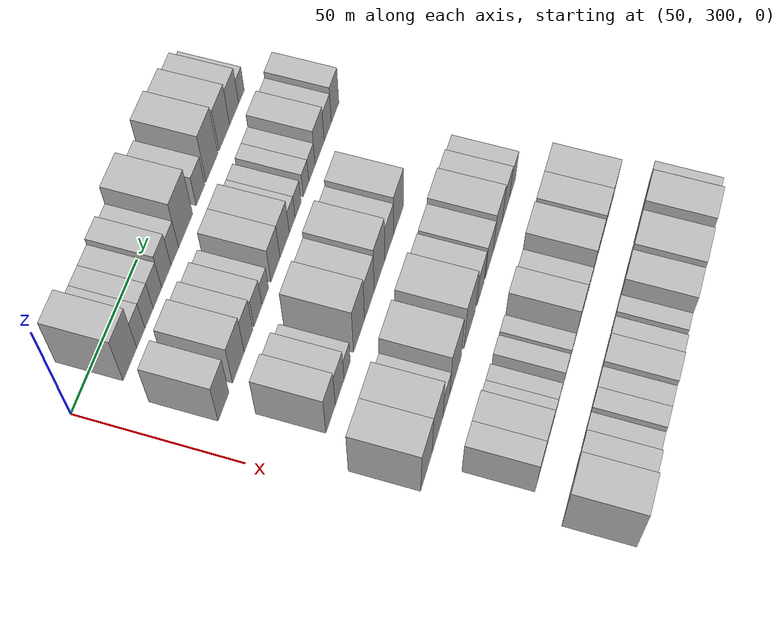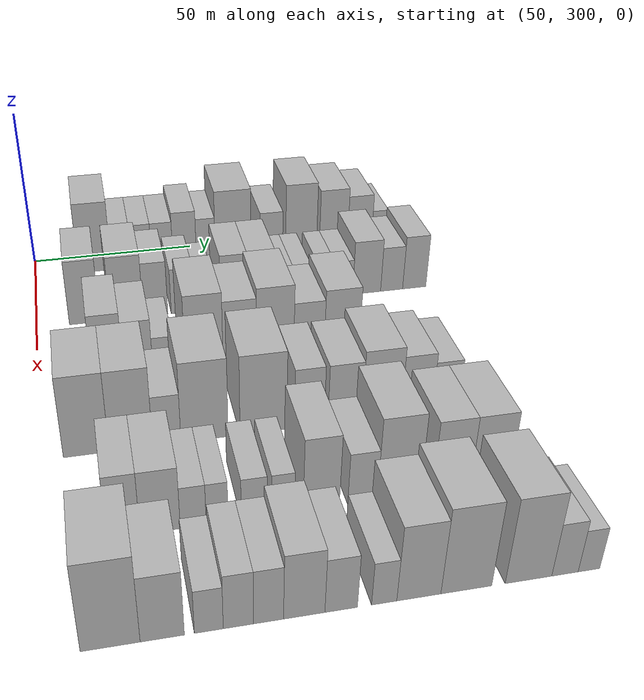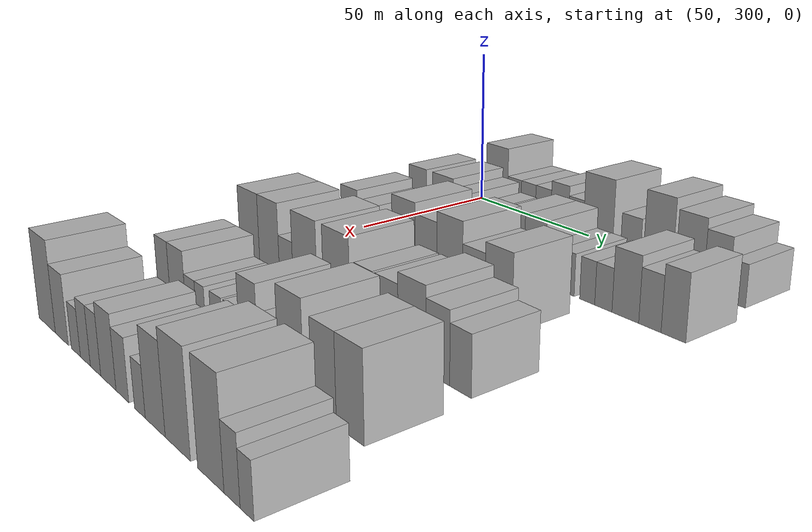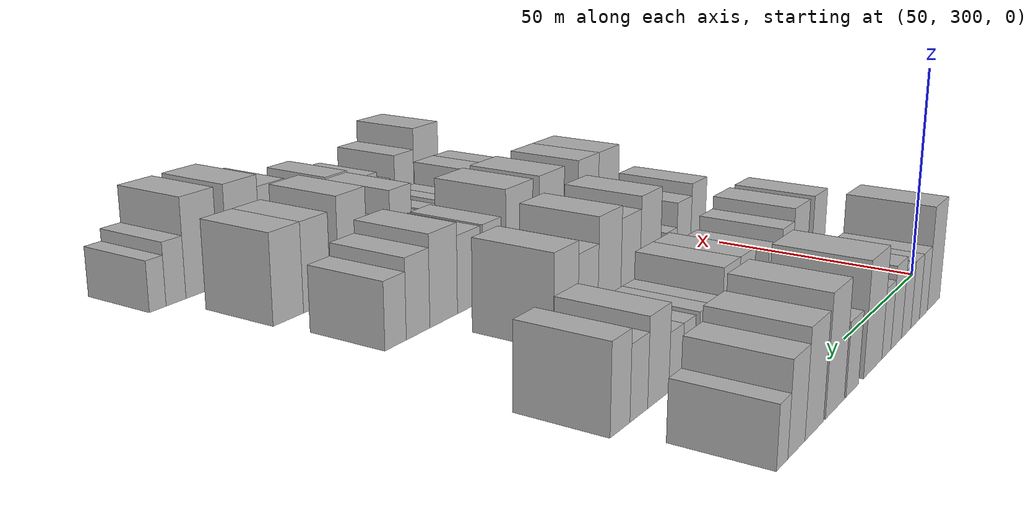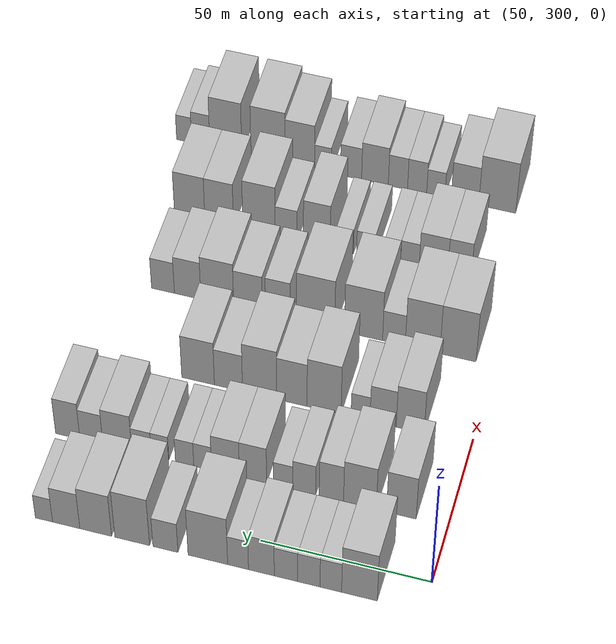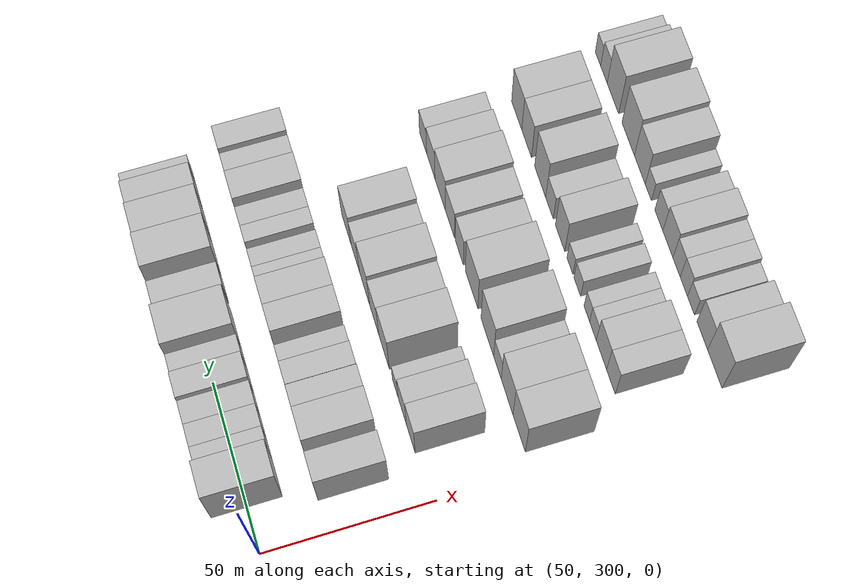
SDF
<sdf version="1.6">
 <world name="default">
  <model name="building_99">
   <static>1</static>
   <pose>50.0000 318.4404 0 0.000000 0.000000 0.000000</pose>
   <link name="link">
    <pose>0 0 12.00 0 0 0</pose>
    <collision name="collision"><geometry><box><size>20.0000 10.3423 24.0000</size></box></geometry></collision>
    <visual name="visual">
     <cast_shadows>0</cast_shadows>
     <geometry><box><size>20.0000 10.3423 24.0000</size></box></geometry>
     <material>
      <script>
       <uri>model://HANNAS_wall/materials/scripts</uri>
       <uri>model://HANNAS_wall/materials/textures</uri>
       <name>vrc/HANNAS_wall</name>
      </script>
     </material>
    </visual>
   </link>
  </model>
  <model name="building_100">
   <static>1</static>
   <pose>50.0000 326.7508 0 0.000000 0.000000 0.000000</pose>
   <link name="link">
    <pose>0 0 7.50 0 0 0</pose>
    <collision name="collision"><geometry><box><size>20.0000 6.2785 15.0000</size></box></geometry></collision>
    <visual name="visual">
     <cast_shadows>0</cast_shadows>
     <geometry><box><size>20.0000 6.2785 15.0000</size></box></geometry>
     <material>
      <script>
       <uri>model://HANNAS_wall/materials/scripts</uri>
       <uri>model://HANNAS_wall/materials/textures</uri>
       <name>vrc/HANNAS_wall</name>
      </script>
     </material>
    </visual>
   </link>
  </model>
  <model name="building_101">
   <static>1</static>
   <pose>50.0000 333.1623 0 0.000000 0.000000 0.000000</pose>
   <link name="link">
    <pose>0 0 7.50 0 0 0</pose>
    <collision name="collision"><geometry><box><size>20.0000 6.5444 15.0000</size></box></geometry></collision>
    <visual name="visual">
     <cast_shadows>0</cast_shadows>
     <geometry><box><size>20.0000 6.5444 15.0000</size></box></geometry>
     <material>
      <script>
       <uri>model://HANNAS_wall/materials/scripts</uri>
       <uri>model://HANNAS_wall/materials/textures</uri>
       <name>vrc/HANNAS_wall</name>
      </script>
     </material>
    </visual>
   </link>
  </model>
  <model name="building_102">
   <static>1</static>
   <pose>50.0000 339.8382 0 0.000000 0.000000 0.000000</pose>
   <link name="link">
    <pose>0 0 7.50 0 0 0</pose>
    <collision name="collision"><geometry><box><size>20.0000 6.8074 15.0000</size></box></geometry></collision>
    <visual name="visual">
     <cast_shadows>0</cast_shadows>
     <geometry><box><size>20.0000 6.8074 15.0000</size></box></geometry>
     <material>
      <script>
       <uri>model://HANNAS_wall/materials/scripts</uri>
       <uri>model://HANNAS_wall/materials/textures</uri>
       <name>vrc/HANNAS_wall</name>
      </script>
     </material>
    </visual>
   </link>
  </model>
  <model name="building_103">
   <static>1</static>
   <pose>50.0000 347.0147 0 0.000000 0.000000 0.000000</pose>
   <link name="link">
    <pose>0 0 9.00 0 0 0</pose>
    <collision name="collision"><geometry><box><size>20.0000 7.5456 18.0000</size></box></geometry></collision>
    <visual name="visual">
     <cast_shadows>0</cast_shadows>
     <geometry><box><size>20.0000 7.5456 18.0000</size></box></geometry>
     <material>
      <script>
       <uri>model://HANNAS_wall/materials/scripts</uri>
       <uri>model://HANNAS_wall/materials/textures</uri>
       <name>vrc/HANNAS_wall</name>
      </script>
     </material>
    </visual>
   </link>
  </model>
  <model name="building_104">
   <static>1</static>
   <pose>50.0000 353.8501 0 0.000000 0.000000 0.000000</pose>
   <link name="link">
    <pose>0 0 7.50 0 0 0</pose>
    <collision name="collision"><geometry><box><size>20.0000 6.1251 15.0000</size></box></geometry></collision>
    <visual name="visual">
     <cast_shadows>0</cast_shadows>
     <geometry><box><size>20.0000 6.1251 15.0000</size></box></geometry>
     <material>
      <script>
       <uri>model://HANNAS_wall/materials/scripts</uri>
       <uri>model://HANNAS_wall/materials/textures</uri>
       <name>vrc/HANNAS_wall</name>
      </script>
     </material>
    </visual>
   </link>
  </model>
  <model name="building_105">
   <static>1</static>
   <pose>50.0000 362.7485 0 0.000000 0.000000 0.000000</pose>
   <link name="link">
    <pose>0 0 12.00 0 0 0</pose>
    <collision name="collision"><geometry><box><size>20.0000 11.6719 24.0000</size></box></geometry></collision>
    <visual name="visual">
     <cast_shadows>0</cast_shadows>
     <geometry><box><size>20.0000 11.6719 24.0000</size></box></geometry>
     <material>
      <script>
       <uri>model://HANNAS_wall/materials/scripts</uri>
       <uri>model://HANNAS_wall/materials/textures</uri>
       <name>vrc/HANNAS_wall</name>
      </script>
     </material>
    </visual>
   </link>
  </model>
  <model name="building_106">
   <static>1</static>
   <pose>50.0000 375.2909 0 0.000000 0.000000 0.000000</pose>
   <link name="link">
    <pose>0 0 7.50 0 0 0</pose>
    <collision name="collision"><geometry><box><size>20.0000 7.4128 15.0000</size></box></geometry></collision>
    <visual name="visual">
     <cast_shadows>0</cast_shadows>
     <geometry><box><size>20.0000 7.4128 15.0000</size></box></geometry>
     <material>
      <script>
       <uri>model://HANNAS_wall/materials/scripts</uri>
       <uri>model://HANNAS_wall/materials/textures</uri>
       <name>vrc/HANNAS_wall</name>
      </script>
     </material>
    </visual>
   </link>
  </model>
  <model name="building_107">
   <static>1</static>
   <pose>50.0000 385.1627 0 0.000000 0.000000 0.000000</pose>
   <link name="link">
    <pose>0 0 12.00 0 0 0</pose>
    <collision name="collision"><geometry><box><size>20.0000 10.3308 24.0000</size></box></geometry></collision>
    <visual name="visual">
     <cast_shadows>0</cast_shadows>
     <geometry><box><size>20.0000 10.3308 24.0000</size></box></geometry>
     <material>
      <script>
       <uri>model://HANNAS_wall/materials/scripts</uri>
       <uri>model://HANNAS_wall/materials/textures</uri>
       <name>vrc/HANNAS_wall</name>
      </script>
     </material>
    </visual>
   </link>
  </model>
  <model name="building_108">
   <static>1</static>
   <pose>50.0000 396.0615 0 0.000000 0.000000 0.000000</pose>
   <link name="link">
    <pose>0 0 10.50 0 0 0</pose>
    <collision name="collision"><geometry><box><size>20.0000 9.4669 21.0000</size></box></geometry></collision>
    <visual name="visual">
     <cast_shadows>0</cast_shadows>
     <geometry><box><size>20.0000 9.4669 21.0000</size></box></geometry>
     <material>
      <script>
       <uri>model://HANNAS_wall/materials/scripts</uri>
       <uri>model://HANNAS_wall/materials/textures</uri>
       <name>vrc/HANNAS_wall</name>
      </script>
     </material>
    </visual>
   </link>
  </model>
  <model name="building_109">
   <static>1</static>
   <pose>50.0000 404.8894 0 0.000000 0.000000 0.000000</pose>
   <link name="link">
    <pose>0 0 9.00 0 0 0</pose>
    <collision name="collision"><geometry><box><size>20.0000 8.1889 18.0000</size></box></geometry></collision>
    <visual name="visual">
     <cast_shadows>0</cast_shadows>
     <geometry><box><size>20.0000 8.1889 18.0000</size></box></geometry>
     <material>
      <script>
       <uri>model://HANNAS_wall/materials/scripts</uri>
       <uri>model://HANNAS_wall/materials/textures</uri>
       <name>vrc/HANNAS_wall</name>
      </script>
     </material>
    </visual>
   </link>
  </model>
  <model name="building_110">
   <static>1</static>
   <pose>50.0000 411.5685 0 0.000000 0.000000 0.000000</pose>
   <link name="link">
    <pose>0 0 6.00 0 0 0</pose>
    <collision name="collision"><geometry><box><size>20.0000 5.1693 12.0000</size></box></geometry></collision>
    <visual name="visual">
     <cast_shadows>0</cast_shadows>
     <geometry><box><size>20.0000 5.1693 12.0000</size></box></geometry>
     <material>
      <script>
       <uri>model://HANNAS_wall/materials/scripts</uri>
       <uri>model://HANNAS_wall/materials/textures</uri>
       <name>vrc/HANNAS_wall</name>
      </script>
     </material>
    </visual>
   </link>
  </model>
  <model name="building_210">
   <static>1</static>
   <pose>79.0000 313.7663 0 0.000000 0.000000 0.000000</pose>
   <link name="link">
    <pose>0 0 10.50 0 0 0</pose>
    <collision name="collision"><geometry><box><size>20.0000 8.7378 21.0000</size></box></geometry></collision>
    <visual name="visual">
     <cast_shadows>0</cast_shadows>
     <geometry><box><size>20.0000 8.7378 21.0000</size></box></geometry>
     <material>
      <script>
       <uri>model://HANNAS_wall/materials/scripts</uri>
       <uri>model://HANNAS_wall/materials/textures</uri>
       <name>vrc/HANNAS_wall</name>
      </script>
     </material>
    </visual>
   </link>
  </model>
  <model name="building_211">
   <static>1</static>
   <pose>79.0000 325.9975 0 0.000000 0.000000 0.000000</pose>
   <link name="link">
    <pose>0 0 10.50 0 0 0</pose>
    <collision name="collision"><geometry><box><size>20.0000 9.7245 21.0000</size></box></geometry></collision>
    <visual name="visual">
     <cast_shadows>0</cast_shadows>
     <geometry><box><size>20.0000 9.7245 21.0000</size></box></geometry>
     <material>
      <script>
       <uri>model://HANNAS_wall/materials/scripts</uri>
       <uri>model://HANNAS_wall/materials/textures</uri>
       <name>vrc/HANNAS_wall</name>
      </script>
     </material>
    </visual>
   </link>
  </model>
  <model name="building_212">
   <static>1</static>
   <pose>79.0000 334.4878 0 0.000000 0.000000 0.000000</pose>
   <link name="link">
    <pose>0 0 9.00 0 0 0</pose>
    <collision name="collision"><geometry><box><size>20.0000 7.2562 18.0000</size></box></geometry></collision>
    <visual name="visual">
     <cast_shadows>0</cast_shadows>
     <geometry><box><size>20.0000 7.2562 18.0000</size></box></geometry>
     <material>
      <script>
       <uri>model://HANNAS_wall/materials/scripts</uri>
       <uri>model://HANNAS_wall/materials/textures</uri>
       <name>vrc/HANNAS_wall</name>
      </script>
     </material>
    </visual>
   </link>
  </model>
  <model name="building_213">
   <static>1</static>
   <pose>79.0000 342.5482 0 0.000000 0.000000 0.000000</pose>
   <link name="link">
    <pose>0 0 7.50 0 0 0</pose>
    <collision name="collision"><geometry><box><size>20.0000 6.8645 15.0000</size></box></geometry></collision>
    <visual name="visual">
     <cast_shadows>0</cast_shadows>
     <geometry><box><size>20.0000 6.8645 15.0000</size></box></geometry>
     <material>
      <script>
       <uri>model://HANNAS_wall/materials/scripts</uri>
       <uri>model://HANNAS_wall/materials/textures</uri>
       <name>vrc/HANNAS_wall</name>
      </script>
     </material>
    </visual>
   </link>
  </model>
  <model name="building_214">
   <static>1</static>
   <pose>79.0000 348.8941 0 0.000000 0.000000 0.000000</pose>
   <link name="link">
    <pose>0 0 6.00 0 0 0</pose>
    <collision name="collision"><geometry><box><size>20.0000 5.8273 12.0000</size></box></geometry></collision>
    <visual name="visual">
     <cast_shadows>0</cast_shadows>
     <geometry><box><size>20.0000 5.8273 12.0000</size></box></geometry>
     <material>
      <script>
       <uri>model://HANNAS_wall/materials/scripts</uri>
       <uri>model://HANNAS_wall/materials/textures</uri>
       <name>vrc/HANNAS_wall</name>
      </script>
     </material>
    </visual>
   </link>
  </model>
  <model name="building_215">
   <static>1</static>
   <pose>79.0000 357.8772 0 0.000000 0.000000 0.000000</pose>
   <link name="link">
    <pose>0 0 9.00 0 0 0</pose>
    <collision name="collision"><geometry><box><size>20.0000 8.1389 18.0000</size></box></geometry></collision>
    <visual name="visual">
     <cast_shadows>0</cast_shadows>
     <geometry><box><size>20.0000 8.1389 18.0000</size></box></geometry>
     <material>
      <script>
       <uri>model://HANNAS_wall/materials/scripts</uri>
       <uri>model://HANNAS_wall/materials/textures</uri>
       <name>vrc/HANNAS_wall</name>
      </script>
     </material>
    </visual>
   </link>
  </model>
  <model name="building_216">
   <static>1</static>
   <pose>79.0000 366.1434 0 0.000000 0.000000 0.000000</pose>
   <link name="link">
    <pose>0 0 9.00 0 0 0</pose>
    <collision name="collision"><geometry><box><size>20.0000 8.3935 18.0000</size></box></geometry></collision>
    <visual name="visual">
     <cast_shadows>0</cast_shadows>
     <geometry><box><size>20.0000 8.3935 18.0000</size></box></geometry>
     <material>
      <script>
       <uri>model://HANNAS_wall/materials/scripts</uri>
       <uri>model://HANNAS_wall/materials/textures</uri>
       <name>vrc/HANNAS_wall</name>
      </script>
     </material>
    </visual>
   </link>
  </model>
  <model name="building_217">
   <static>1</static>
   <pose>79.0000 373.0303 0 0.000000 0.000000 0.000000</pose>
   <link name="link">
    <pose>0 0 6.00 0 0 0</pose>
    <collision name="collision"><geometry><box><size>20.0000 5.3803 12.0000</size></box></geometry></collision>
    <visual name="visual">
     <cast_shadows>0</cast_shadows>
     <geometry><box><size>20.0000 5.3803 12.0000</size></box></geometry>
     <material>
      <script>
       <uri>model://HANNAS_wall/materials/scripts</uri>
       <uri>model://HANNAS_wall/materials/textures</uri>
       <name>vrc/HANNAS_wall</name>
      </script>
     </material>
    </visual>
   </link>
  </model>
  <model name="building_218">
   <static>1</static>
   <pose>79.0000 378.4898 0 0.000000 0.000000 0.000000</pose>
   <link name="link">
    <pose>0 0 6.00 0 0 0</pose>
    <collision name="collision"><geometry><box><size>20.0000 5.5388 12.0000</size></box></geometry></collision>
    <visual name="visual">
     <cast_shadows>0</cast_shadows>
     <geometry><box><size>20.0000 5.5388 12.0000</size></box></geometry>
     <material>
      <script>
       <uri>model://HANNAS_wall/materials/scripts</uri>
       <uri>model://HANNAS_wall/materials/textures</uri>
       <name>vrc/HANNAS_wall</name>
      </script>
     </material>
    </visual>
   </link>
  </model>
  <model name="building_219">
   <static>1</static>
   <pose>79.0000 385.9357 0 0.000000 0.000000 0.000000</pose>
   <link name="link">
    <pose>0 0 6.00 0 0 0</pose>
    <collision name="collision"><geometry><box><size>20.0000 5.3530 12.0000</size></box></geometry></collision>
    <visual name="visual">
     <cast_shadows>0</cast_shadows>
     <geometry><box><size>20.0000 5.3530 12.0000</size></box></geometry>
     <material>
      <script>
       <uri>model://HANNAS_wall/materials/scripts</uri>
       <uri>model://HANNAS_wall/materials/textures</uri>
       <name>vrc/HANNAS_wall</name>
      </script>
     </material>
    </visual>
   </link>
  </model>
  <model name="building_220">
   <static>1</static>
   <pose>79.0000 391.5717 0 0.000000 0.000000 0.000000</pose>
   <link name="link">
    <pose>0 0 6.00 0 0 0</pose>
    <collision name="collision"><geometry><box><size>20.0000 5.9190 12.0000</size></box></geometry></collision>
    <visual name="visual">
     <cast_shadows>0</cast_shadows>
     <geometry><box><size>20.0000 5.9190 12.0000</size></box></geometry>
     <material>
      <script>
       <uri>model://HANNAS_wall/materials/scripts</uri>
       <uri>model://HANNAS_wall/materials/textures</uri>
       <name>vrc/HANNAS_wall</name>
      </script>
     </material>
    </visual>
   </link>
  </model>
  <model name="building_221">
   <static>1</static>
   <pose>79.0000 398.9462 0 0.000000 0.000000 0.000000</pose>
   <link name="link">
    <pose>0 0 9.00 0 0 0</pose>
    <collision name="collision"><geometry><box><size>20.0000 8.8301 18.0000</size></box></geometry></collision>
    <visual name="visual">
     <cast_shadows>0</cast_shadows>
     <geometry><box><size>20.0000 8.8301 18.0000</size></box></geometry>
     <material>
      <script>
       <uri>model://HANNAS_wall/materials/scripts</uri>
       <uri>model://HANNAS_wall/materials/textures</uri>
       <name>vrc/HANNAS_wall</name>
      </script>
     </material>
    </visual>
   </link>
  </model>
  <model name="building_222">
   <static>1</static>
   <pose>79.0000 406.8720 0 0.000000 0.000000 0.000000</pose>
   <link name="link">
    <pose>0 0 7.50 0 0 0</pose>
    <collision name="collision"><geometry><box><size>20.0000 7.0215 15.0000</size></box></geometry></collision>
    <visual name="visual">
     <cast_shadows>0</cast_shadows>
     <geometry><box><size>20.0000 7.0215 15.0000</size></box></geometry>
     <material>
      <script>
       <uri>model://HANNAS_wall/materials/scripts</uri>
       <uri>model://HANNAS_wall/materials/textures</uri>
       <name>vrc/HANNAS_wall</name>
      </script>
     </material>
    </visual>
   </link>
  </model>
  <model name="building_223">
   <static>1</static>
   <pose>79.0000 414.1102 0 0.000000 0.000000 0.000000</pose>
   <link name="link">
    <pose>0 0 9.00 0 0 0</pose>
    <collision name="collision"><geometry><box><size>20.0000 7.4547 18.0000</size></box></geometry></collision>
    <visual name="visual">
     <cast_shadows>0</cast_shadows>
     <geometry><box><size>20.0000 7.4547 18.0000</size></box></geometry>
     <material>
      <script>
       <uri>model://HANNAS_wall/materials/scripts</uri>
       <uri>model://HANNAS_wall/materials/textures</uri>
       <name>vrc/HANNAS_wall</name>
      </script>
     </material>
    </visual>
   </link>
  </model>
  <model name="building_325">
   <static>1</static>
   <pose>108.0000 318.5356 0 0.000000 0.000000 0.000000</pose>
   <link name="link">
    <pose>0 0 10.50 0 0 0</pose>
    <collision name="collision"><geometry><box><size>20.0000 8.4331 21.0000</size></box></geometry></collision>
    <visual name="visual">
     <cast_shadows>0</cast_shadows>
     <geometry><box><size>20.0000 8.4331 21.0000</size></box></geometry>
     <material>
      <script>
       <uri>model://HANNAS_wall/materials/scripts</uri>
       <uri>model://HANNAS_wall/materials/textures</uri>
       <name>vrc/HANNAS_wall</name>
      </script>
     </material>
    </visual>
   </link>
  </model>
  <model name="building_326">
   <static>1</static>
   <pose>108.0000 326.7048 0 0.000000 0.000000 0.000000</pose>
   <link name="link">
    <pose>0 0 9.00 0 0 0</pose>
    <collision name="collision"><geometry><box><size>20.0000 7.9053 18.0000</size></box></geometry></collision>
    <visual name="visual">
     <cast_shadows>0</cast_shadows>
     <geometry><box><size>20.0000 7.9053 18.0000</size></box></geometry>
     <material>
      <script>
       <uri>model://HANNAS_wall/materials/scripts</uri>
       <uri>model://HANNAS_wall/materials/textures</uri>
       <name>vrc/HANNAS_wall</name>
      </script>
     </material>
    </visual>
   </link>
  </model>
  <model name="building_327">
   <static>1</static>
   <pose>108.0000 333.5377 0 0.000000 0.000000 0.000000</pose>
   <link name="link">
    <pose>0 0 6.00 0 0 0</pose>
    <collision name="collision"><geometry><box><size>20.0000 5.7606 12.0000</size></box></geometry></collision>
    <visual name="visual">
     <cast_shadows>0</cast_shadows>
     <geometry><box><size>20.0000 5.7606 12.0000</size></box></geometry>
     <material>
      <script>
       <uri>model://HANNAS_wall/materials/scripts</uri>
       <uri>model://HANNAS_wall/materials/textures</uri>
       <name>vrc/HANNAS_wall</name>
      </script>
     </material>
    </visual>
   </link>
  </model>
  <model name="building_328">
   <static>1</static>
   <pose>108.0000 344.6061 0 0.000000 0.000000 0.000000</pose>
   <link name="link">
    <pose>0 0 12.00 0 0 0</pose>
    <collision name="collision"><geometry><box><size>20.0000 10.3760 24.0000</size></box></geometry></collision>
    <visual name="visual">
     <cast_shadows>0</cast_shadows>
     <geometry><box><size>20.0000 10.3760 24.0000</size></box></geometry>
     <material>
      <script>
       <uri>model://HANNAS_wall/materials/scripts</uri>
       <uri>model://HANNAS_wall/materials/textures</uri>
       <name>vrc/HANNAS_wall</name>
      </script>
     </material>
    </visual>
   </link>
  </model>
  <model name="building_329">
   <static>1</static>
   <pose>108.0000 354.4221 0 0.000000 0.000000 0.000000</pose>
   <link name="link">
    <pose>0 0 10.50 0 0 0</pose>
    <collision name="collision"><geometry><box><size>20.0000 9.2561 21.0000</size></box></geometry></collision>
    <visual name="visual">
     <cast_shadows>0</cast_shadows>
     <geometry><box><size>20.0000 9.2561 21.0000</size></box></geometry>
     <material>
      <script>
       <uri>model://HANNAS_wall/materials/scripts</uri>
       <uri>model://HANNAS_wall/materials/textures</uri>
       <name>vrc/HANNAS_wall</name>
      </script>
     </material>
    </visual>
   </link>
  </model>
  <model name="building_330">
   <static>1</static>
   <pose>108.0000 364.2839 0 0.000000 0.000000 0.000000</pose>
   <link name="link">
    <pose>0 0 12.00 0 0 0</pose>
    <collision name="collision"><geometry><box><size>20.0000 10.4676 24.0000</size></box></geometry></collision>
    <visual name="visual">
     <cast_shadows>0</cast_shadows>
     <geometry><box><size>20.0000 10.4676 24.0000</size></box></geometry>
     <material>
      <script>
       <uri>model://HANNAS_wall/materials/scripts</uri>
       <uri>model://HANNAS_wall/materials/textures</uri>
       <name>vrc/HANNAS_wall</name>
      </script>
     </material>
    </visual>
   </link>
  </model>
  <model name="building_331">
   <static>1</static>
   <pose>108.0000 373.8463 0 0.000000 0.000000 0.000000</pose>
   <link name="link">
    <pose>0 0 9.00 0 0 0</pose>
    <collision name="collision"><geometry><box><size>20.0000 8.6572 18.0000</size></box></geometry></collision>
    <visual name="visual">
     <cast_shadows>0</cast_shadows>
     <geometry><box><size>20.0000 8.6572 18.0000</size></box></geometry>
     <material>
      <script>
       <uri>model://HANNAS_wall/materials/scripts</uri>
       <uri>model://HANNAS_wall/materials/textures</uri>
       <name>vrc/HANNAS_wall</name>
      </script>
     </material>
    </visual>
   </link>
  </model>
  <model name="building_332">
   <static>1</static>
   <pose>108.0000 383.2151 0 0.000000 0.000000 0.000000</pose>
   <link name="link">
    <pose>0 0 10.50 0 0 0</pose>
    <collision name="collision"><geometry><box><size>20.0000 10.0802 21.0000</size></box></geometry></collision>
    <visual name="visual">
     <cast_shadows>0</cast_shadows>
     <geometry><box><size>20.0000 10.0802 21.0000</size></box></geometry>
     <material>
      <script>
       <uri>model://HANNAS_wall/materials/scripts</uri>
       <uri>model://HANNAS_wall/materials/textures</uri>
       <name>vrc/HANNAS_wall</name>
      </script>
     </material>
    </visual>
   </link>
  </model>
  <model name="building_436">
   <static>1</static>
   <pose>137.0000 311.2284 0 0.000000 0.000000 0.000000</pose>
   <link name="link">
    <pose>0 0 12.00 0 0 0</pose>
    <collision name="collision"><geometry><box><size>20.0000 11.0519 24.0000</size></box></geometry></collision>
    <visual name="visual">
     <cast_shadows>0</cast_shadows>
     <geometry><box><size>20.0000 11.0519 24.0000</size></box></geometry>
     <material>
      <script>
       <uri>model://HANNAS_wall/materials/scripts</uri>
       <uri>model://HANNAS_wall/materials/textures</uri>
       <name>vrc/HANNAS_wall</name>
      </script>
     </material>
    </visual>
   </link>
  </model>
  <model name="building_437">
   <static>1</static>
   <pose>137.0000 322.0855 0 0.000000 0.000000 0.000000</pose>
   <link name="link">
    <pose>0 0 12.00 0 0 0</pose>
    <collision name="collision"><geometry><box><size>20.0000 10.6623 24.0000</size></box></geometry></collision>
    <visual name="visual">
     <cast_shadows>0</cast_shadows>
     <geometry><box><size>20.0000 10.6623 24.0000</size></box></geometry>
     <material>
      <script>
       <uri>model://HANNAS_wall/materials/scripts</uri>
       <uri>model://HANNAS_wall/materials/textures</uri>
       <name>vrc/HANNAS_wall</name>
      </script>
     </material>
    </visual>
   </link>
  </model>
  <model name="building_438">
   <static>1</static>
   <pose>137.0000 330.9194 0 0.000000 0.000000 0.000000</pose>
   <link name="link">
    <pose>0 0 7.50 0 0 0</pose>
    <collision name="collision"><geometry><box><size>20.0000 7.0056 15.0000</size></box></geometry></collision>
    <visual name="visual">
     <cast_shadows>0</cast_shadows>
     <geometry><box><size>20.0000 7.0056 15.0000</size></box></geometry>
     <material>
      <script>
       <uri>model://HANNAS_wall/materials/scripts</uri>
       <uri>model://HANNAS_wall/materials/textures</uri>
       <name>vrc/HANNAS_wall</name>
      </script>
     </material>
    </visual>
   </link>
  </model>
  <model name="building_439">
   <static>1</static>
   <pose>137.0000 340.3275 0 0.000000 0.000000 0.000000</pose>
   <link name="link">
    <pose>0 0 12.00 0 0 0</pose>
    <collision name="collision"><geometry><box><size>20.0000 11.8105 24.0000</size></box></geometry></collision>
    <visual name="visual">
     <cast_shadows>0</cast_shadows>
     <geometry><box><size>20.0000 11.8105 24.0000</size></box></geometry>
     <material>
      <script>
       <uri>model://HANNAS_wall/materials/scripts</uri>
       <uri>model://HANNAS_wall/materials/textures</uri>
       <name>vrc/HANNAS_wall</name>
      </script>
     </material>
    </visual>
   </link>
  </model>
  <model name="building_440">
   <static>1</static>
   <pose>137.0000 355.1762 0 0.000000 0.000000 0.000000</pose>
   <link name="link">
    <pose>0 0 12.00 0 0 0</pose>
    <collision name="collision"><geometry><box><size>20.0000 11.8869 24.0000</size></box></geometry></collision>
    <visual name="visual">
     <cast_shadows>0</cast_shadows>
     <geometry><box><size>20.0000 11.8869 24.0000</size></box></geometry>
     <material>
      <script>
       <uri>model://HANNAS_wall/materials/scripts</uri>
       <uri>model://HANNAS_wall/materials/textures</uri>
       <name>vrc/HANNAS_wall</name>
      </script>
     </material>
    </visual>
   </link>
  </model>
  <model name="building_441">
   <static>1</static>
   <pose>137.0000 366.9647 0 0.000000 0.000000 0.000000</pose>
   <link name="link">
    <pose>0 0 9.00 0 0 0</pose>
    <collision name="collision"><geometry><box><size>20.0000 7.6899 18.0000</size></box></geometry></collision>
    <visual name="visual">
     <cast_shadows>0</cast_shadows>
     <geometry><box><size>20.0000 7.6899 18.0000</size></box></geometry>
     <material>
      <script>
       <uri>model://HANNAS_wall/materials/scripts</uri>
       <uri>model://HANNAS_wall/materials/textures</uri>
       <name>vrc/HANNAS_wall</name>
      </script>
     </material>
    </visual>
   </link>
  </model>
  <model name="building_442">
   <static>1</static>
   <pose>137.0000 376.3082 0 0.000000 0.000000 0.000000</pose>
   <link name="link">
    <pose>0 0 9.00 0 0 0</pose>
    <collision name="collision"><geometry><box><size>20.0000 8.9971 18.0000</size></box></geometry></collision>
    <visual name="visual">
     <cast_shadows>0</cast_shadows>
     <geometry><box><size>20.0000 8.9971 18.0000</size></box></geometry>
     <material>
      <script>
       <uri>model://HANNAS_wall/materials/scripts</uri>
       <uri>model://HANNAS_wall/materials/textures</uri>
       <name>vrc/HANNAS_wall</name>
      </script>
     </material>
    </visual>
   </link>
  </model>
  <model name="building_443">
   <static>1</static>
   <pose>137.0000 385.9704 0 0.000000 0.000000 0.000000</pose>
   <link name="link">
    <pose>0 0 10.50 0 0 0</pose>
    <collision name="collision"><geometry><box><size>20.0000 10.3273 21.0000</size></box></geometry></collision>
    <visual name="visual">
     <cast_shadows>0</cast_shadows>
     <geometry><box><size>20.0000 10.3273 21.0000</size></box></geometry>
     <material>
      <script>
       <uri>model://HANNAS_wall/materials/scripts</uri>
       <uri>model://HANNAS_wall/materials/textures</uri>
       <name>vrc/HANNAS_wall</name>
      </script>
     </material>
    </visual>
   </link>
  </model>
  <model name="building_444">
   <static>1</static>
   <pose>137.0000 395.3171 0 0.000000 0.000000 0.000000</pose>
   <link name="link">
    <pose>0 0 9.00 0 0 0</pose>
    <collision name="collision"><geometry><box><size>20.0000 8.3662 18.0000</size></box></geometry></collision>
    <visual name="visual">
     <cast_shadows>0</cast_shadows>
     <geometry><box><size>20.0000 8.3662 18.0000</size></box></geometry>
     <material>
      <script>
       <uri>model://HANNAS_wall/materials/scripts</uri>
       <uri>model://HANNAS_wall/materials/textures</uri>
       <name>vrc/HANNAS_wall</name>
      </script>
     </material>
    </visual>
   </link>
  </model>
  <model name="building_445">
   <static>1</static>
   <pose>137.0000 403.1264 0 0.000000 0.000000 0.000000</pose>
   <link name="link">
    <pose>0 0 7.50 0 0 0</pose>
    <collision name="collision"><geometry><box><size>20.0000 7.2524 15.0000</size></box></geometry></collision>
    <visual name="visual">
     <cast_shadows>0</cast_shadows>
     <geometry><box><size>20.0000 7.2524 15.0000</size></box></geometry>
     <material>
      <script>
       <uri>model://HANNAS_wall/materials/scripts</uri>
       <uri>model://HANNAS_wall/materials/textures</uri>
       <name>vrc/HANNAS_wall</name>
      </script>
     </material>
    </visual>
   </link>
  </model>
  <model name="building_551">
   <static>1</static>
   <pose>166.0000 317.8193 0 0.000000 0.000000 0.000000</pose>
   <link name="link">
    <pose>0 0 9.00 0 0 0</pose>
    <collision name="collision"><geometry><box><size>20.0000 7.3706 18.0000</size></box></geometry></collision>
    <visual name="visual">
     <cast_shadows>0</cast_shadows>
     <geometry><box><size>20.0000 7.3706 18.0000</size></box></geometry>
     <material>
      <script>
       <uri>model://HANNAS_wall/materials/scripts</uri>
       <uri>model://HANNAS_wall/materials/textures</uri>
       <name>vrc/HANNAS_wall</name>
      </script>
     </material>
    </visual>
   </link>
  </model>
  <model name="building_552">
   <static>1</static>
   <pose>166.0000 325.9882 0 0.000000 0.000000 0.000000</pose>
   <link name="link">
    <pose>0 0 9.00 0 0 0</pose>
    <collision name="collision"><geometry><box><size>20.0000 8.9674 18.0000</size></box></geometry></collision>
    <visual name="visual">
     <cast_shadows>0</cast_shadows>
     <geometry><box><size>20.0000 8.9674 18.0000</size></box></geometry>
     <material>
      <script>
       <uri>model://HANNAS_wall/materials/scripts</uri>
       <uri>model://HANNAS_wall/materials/textures</uri>
       <name>vrc/HANNAS_wall</name>
      </script>
     </material>
    </visual>
   </link>
  </model>
  <model name="building_553">
   <static>1</static>
   <pose>166.0000 333.3866 0 0.000000 0.000000 0.000000</pose>
   <link name="link">
    <pose>0 0 6.00 0 0 0</pose>
    <collision name="collision"><geometry><box><size>20.0000 5.8293 12.0000</size></box></geometry></collision>
    <visual name="visual">
     <cast_shadows>0</cast_shadows>
     <geometry><box><size>20.0000 5.8293 12.0000</size></box></geometry>
     <material>
      <script>
       <uri>model://HANNAS_wall/materials/scripts</uri>
       <uri>model://HANNAS_wall/materials/textures</uri>
       <name>vrc/HANNAS_wall</name>
      </script>
     </material>
    </visual>
   </link>
  </model>
  <model name="building_554">
   <static>1</static>
   <pose>166.0000 338.7832 0 0.000000 0.000000 0.000000</pose>
   <link name="link">
    <pose>0 0 6.00 0 0 0</pose>
    <collision name="collision"><geometry><box><size>20.0000 4.9639 12.0000</size></box></geometry></collision>
    <visual name="visual">
     <cast_shadows>0</cast_shadows>
     <geometry><box><size>20.0000 4.9639 12.0000</size></box></geometry>
     <material>
      <script>
       <uri>model://HANNAS_wall/materials/scripts</uri>
       <uri>model://HANNAS_wall/materials/textures</uri>
       <name>vrc/HANNAS_wall</name>
      </script>
     </material>
    </visual>
   </link>
  </model>
  <model name="building_555">
   <static>1</static>
   <pose>166.0000 347.2281 0 0.000000 0.000000 0.000000</pose>
   <link name="link">
    <pose>0 0 6.00 0 0 0</pose>
    <collision name="collision"><geometry><box><size>20.0000 5.9260 12.0000</size></box></geometry></collision>
    <visual name="visual">
     <cast_shadows>0</cast_shadows>
     <geometry><box><size>20.0000 5.9260 12.0000</size></box></geometry>
     <material>
      <script>
       <uri>model://HANNAS_wall/materials/scripts</uri>
       <uri>model://HANNAS_wall/materials/textures</uri>
       <name>vrc/HANNAS_wall</name>
      </script>
     </material>
    </visual>
   </link>
  </model>
  <model name="building_556">
   <static>1</static>
   <pose>166.0000 353.8689 0 0.000000 0.000000 0.000000</pose>
   <link name="link">
    <pose>0 0 6.00 0 0 0</pose>
    <collision name="collision"><geometry><box><size>20.0000 5.3557 12.0000</size></box></geometry></collision>
    <visual name="visual">
     <cast_shadows>0</cast_shadows>
     <geometry><box><size>20.0000 5.3557 12.0000</size></box></geometry>
     <material>
      <script>
       <uri>model://HANNAS_wall/materials/scripts</uri>
       <uri>model://HANNAS_wall/materials/textures</uri>
       <name>vrc/HANNAS_wall</name>
      </script>
     </material>
    </visual>
   </link>
  </model>
  <model name="building_557">
   <static>1</static>
   <pose>166.0000 362.8059 0 0.000000 0.000000 0.000000</pose>
   <link name="link">
    <pose>0 0 10.50 0 0 0</pose>
    <collision name="collision"><geometry><box><size>20.0000 8.5182 21.0000</size></box></geometry></collision>
    <visual name="visual">
     <cast_shadows>0</cast_shadows>
     <geometry><box><size>20.0000 8.5182 21.0000</size></box></geometry>
     <material>
      <script>
       <uri>model://HANNAS_wall/materials/scripts</uri>
       <uri>model://HANNAS_wall/materials/textures</uri>
       <name>vrc/HANNAS_wall</name>
      </script>
     </material>
    </visual>
   </link>
  </model>
  <model name="building_558">
   <static>1</static>
   <pose>166.0000 372.5559 0 0.000000 0.000000 0.000000</pose>
   <link name="link">
    <pose>0 0 7.50 0 0 0</pose>
    <collision name="collision"><geometry><box><size>20.0000 6.9819 15.0000</size></box></geometry></collision>
    <visual name="visual">
     <cast_shadows>0</cast_shadows>
     <geometry><box><size>20.0000 6.9819 15.0000</size></box></geometry>
     <material>
      <script>
       <uri>model://HANNAS_wall/materials/scripts</uri>
       <uri>model://HANNAS_wall/materials/textures</uri>
       <name>vrc/HANNAS_wall</name>
      </script>
     </material>
    </visual>
   </link>
  </model>
  <model name="building_559">
   <static>1</static>
   <pose>166.0000 381.2269 0 0.000000 0.000000 0.000000</pose>
   <link name="link">
    <pose>0 0 12.00 0 0 0</pose>
    <collision name="collision"><geometry><box><size>20.0000 10.3601 24.0000</size></box></geometry></collision>
    <visual name="visual">
     <cast_shadows>0</cast_shadows>
     <geometry><box><size>20.0000 10.3601 24.0000</size></box></geometry>
     <material>
      <script>
       <uri>model://HANNAS_wall/materials/scripts</uri>
       <uri>model://HANNAS_wall/materials/textures</uri>
       <name>vrc/HANNAS_wall</name>
      </script>
     </material>
    </visual>
   </link>
  </model>
  <model name="building_560">
   <static>1</static>
   <pose>166.0000 394.0041 0 0.000000 0.000000 0.000000</pose>
   <link name="link">
    <pose>0 0 10.50 0 0 0</pose>
    <collision name="collision"><geometry><box><size>20.0000 9.1943 21.0000</size></box></geometry></collision>
    <visual name="visual">
     <cast_shadows>0</cast_shadows>
     <geometry><box><size>20.0000 9.1943 21.0000</size></box></geometry>
     <material>
      <script>
       <uri>model://HANNAS_wall/materials/scripts</uri>
       <uri>model://HANNAS_wall/materials/textures</uri>
       <name>vrc/HANNAS_wall</name>
      </script>
     </material>
    </visual>
   </link>
  </model>
  <model name="building_561">
   <static>1</static>
   <pose>166.0000 403.5029 0 0.000000 0.000000 0.000000</pose>
   <link name="link">
    <pose>0 0 10.50 0 0 0</pose>
    <collision name="collision"><geometry><box><size>20.0000 9.8032 21.0000</size></box></geometry></collision>
    <visual name="visual">
     <cast_shadows>0</cast_shadows>
     <geometry><box><size>20.0000 9.8032 21.0000</size></box></geometry>
     <material>
      <script>
       <uri>model://HANNAS_wall/materials/scripts</uri>
       <uri>model://HANNAS_wall/materials/textures</uri>
       <name>vrc/HANNAS_wall</name>
      </script>
     </material>
    </visual>
   </link>
  </model>
  <model name="building_659">
   <static>1</static>
   <pose>195.0000 312.8465 0 0.000000 0.000000 0.000000</pose>
   <link name="link">
    <pose>0 0 12.00 0 0 0</pose>
    <collision name="collision"><geometry><box><size>20.0000 11.7396 24.0000</size></box></geometry></collision>
    <visual name="visual">
     <cast_shadows>0</cast_shadows>
     <geometry><box><size>20.0000 11.7396 24.0000</size></box></geometry>
     <material>
      <script>
       <uri>model://HANNAS_wall/materials/scripts</uri>
       <uri>model://HANNAS_wall/materials/textures</uri>
       <name>vrc/HANNAS_wall</name>
      </script>
     </material>
    </visual>
   </link>
  </model>
  <model name="building_660">
   <static>1</static>
   <pose>195.0000 323.1130 0 0.000000 0.000000 0.000000</pose>
   <link name="link">
    <pose>0 0 9.00 0 0 0</pose>
    <collision name="collision"><geometry><box><size>20.0000 8.7934 18.0000</size></box></geometry></collision>
    <visual name="visual">
     <cast_shadows>0</cast_shadows>
     <geometry><box><size>20.0000 8.7934 18.0000</size></box></geometry>
     <material>
      <script>
       <uri>model://HANNAS_wall/materials/scripts</uri>
       <uri>model://HANNAS_wall/materials/textures</uri>
       <name>vrc/HANNAS_wall</name>
      </script>
     </material>
    </visual>
   </link>
  </model>
  <model name="building_661">
   <static>1</static>
   <pose>195.0000 332.4245 0 0.000000 0.000000 0.000000</pose>
   <link name="link">
    <pose>0 0 6.00 0 0 0</pose>
    <collision name="collision"><geometry><box><size>20.0000 5.8297 12.0000</size></box></geometry></collision>
    <visual name="visual">
     <cast_shadows>0</cast_shadows>
     <geometry><box><size>20.0000 5.8297 12.0000</size></box></geometry>
     <material>
      <script>
       <uri>model://HANNAS_wall/materials/scripts</uri>
       <uri>model://HANNAS_wall/materials/textures</uri>
       <name>vrc/HANNAS_wall</name>
      </script>
     </material>
    </visual>
   </link>
  </model>
  <model name="building_662">
   <static>1</static>
   <pose>195.0000 338.4123 0 0.000000 0.000000 0.000000</pose>
   <link name="link">
    <pose>0 0 7.50 0 0 0</pose>
    <collision name="collision"><geometry><box><size>20.0000 6.1459 15.0000</size></box></geometry></collision>
    <visual name="visual">
     <cast_shadows>0</cast_shadows>
     <geometry><box><size>20.0000 6.1459 15.0000</size></box></geometry>
     <material>
      <script>
       <uri>model://HANNAS_wall/materials/scripts</uri>
       <uri>model://HANNAS_wall/materials/textures</uri>
       <name>vrc/HANNAS_wall</name>
      </script>
     </material>
    </visual>
   </link>
  </model>
  <model name="building_663">
   <static>1</static>
   <pose>195.0000 344.5796 0 0.000000 0.000000 0.000000</pose>
   <link name="link">
    <pose>0 0 7.50 0 0 0</pose>
    <collision name="collision"><geometry><box><size>20.0000 6.1888 15.0000</size></box></geometry></collision>
    <visual name="visual">
     <cast_shadows>0</cast_shadows>
     <geometry><box><size>20.0000 6.1888 15.0000</size></box></geometry>
     <material>
      <script>
       <uri>model://HANNAS_wall/materials/scripts</uri>
       <uri>model://HANNAS_wall/materials/textures</uri>
       <name>vrc/HANNAS_wall</name>
      </script>
     </material>
    </visual>
   </link>
  </model>
  <model name="building_664">
   <static>1</static>
   <pose>195.0000 351.9800 0 0.000000 0.000000 0.000000</pose>
   <link name="link">
    <pose>0 0 9.00 0 0 0</pose>
    <collision name="collision"><geometry><box><size>20.0000 8.6120 18.0000</size></box></geometry></collision>
    <visual name="visual">
     <cast_shadows>0</cast_shadows>
     <geometry><box><size>20.0000 8.6120 18.0000</size></box></geometry>
     <material>
      <script>
       <uri>model://HANNAS_wall/materials/scripts</uri>
       <uri>model://HANNAS_wall/materials/textures</uri>
       <name>vrc/HANNAS_wall</name>
      </script>
     </material>
    </visual>
   </link>
  </model>
  <model name="building_665">
   <static>1</static>
   <pose>195.0000 359.7176 0 0.000000 0.000000 0.000000</pose>
   <link name="link">
    <pose>0 0 7.50 0 0 0</pose>
    <collision name="collision"><geometry><box><size>20.0000 6.8632 15.0000</size></box></geometry></collision>
    <visual name="visual">
     <cast_shadows>0</cast_shadows>
     <geometry><box><size>20.0000 6.8632 15.0000</size></box></geometry>
     <material>
      <script>
       <uri>model://HANNAS_wall/materials/scripts</uri>
       <uri>model://HANNAS_wall/materials/textures</uri>
       <name>vrc/HANNAS_wall</name>
      </script>
     </material>
    </visual>
   </link>
  </model>
  <model name="building_666">
   <static>1</static>
   <pose>195.0000 368.8455 0 0.000000 0.000000 0.000000</pose>
   <link name="link">
    <pose>0 0 6.00 0 0 0</pose>
    <collision name="collision"><geometry><box><size>20.0000 5.3924 12.0000</size></box></geometry></collision>
    <visual name="visual">
     <cast_shadows>0</cast_shadows>
     <geometry><box><size>20.0000 5.3924 12.0000</size></box></geometry>
     <material>
      <script>
       <uri>model://HANNAS_wall/materials/scripts</uri>
       <uri>model://HANNAS_wall/materials/textures</uri>
       <name>vrc/HANNAS_wall</name>
      </script>
     </material>
    </visual>
   </link>
  </model>
  <model name="building_667">
   <static>1</static>
   <pose>195.0000 376.3137 0 0.000000 0.000000 0.000000</pose>
   <link name="link">
    <pose>0 0 10.50 0 0 0</pose>
    <collision name="collision"><geometry><box><size>20.0000 9.5441 21.0000</size></box></geometry></collision>
    <visual name="visual">
     <cast_shadows>0</cast_shadows>
     <geometry><box><size>20.0000 9.5441 21.0000</size></box></geometry>
     <material>
      <script>
       <uri>model://HANNAS_wall/materials/scripts</uri>
       <uri>model://HANNAS_wall/materials/textures</uri>
       <name>vrc/HANNAS_wall</name>
      </script>
     </material>
    </visual>
   </link>
  </model>
  <model name="building_668">
   <static>1</static>
   <pose>195.0000 386.6786 0 0.000000 0.000000 0.000000</pose>
   <link name="link">
    <pose>0 0 12.00 0 0 0</pose>
    <collision name="collision"><geometry><box><size>20.0000 11.1856 24.0000</size></box></geometry></collision>
    <visual name="visual">
     <cast_shadows>0</cast_shadows>
     <geometry><box><size>20.0000 11.1856 24.0000</size></box></geometry>
     <material>
      <script>
       <uri>model://HANNAS_wall/materials/scripts</uri>
       <uri>model://HANNAS_wall/materials/textures</uri>
       <name>vrc/HANNAS_wall</name>
      </script>
     </material>
    </visual>
   </link>
  </model>
  <model name="building_669">
   <static>1</static>
   <pose>195.0000 400.5066 0 0.000000 0.000000 0.000000</pose>
   <link name="link">
    <pose>0 0 12.00 0 0 0</pose>
    <collision name="collision"><geometry><box><size>20.0000 10.4703 24.0000</size></box></geometry></collision>
    <visual name="visual">
     <cast_shadows>0</cast_shadows>
     <geometry><box><size>20.0000 10.4703 24.0000</size></box></geometry>
     <material>
      <script>
       <uri>model://HANNAS_wall/materials/scripts</uri>
       <uri>model://HANNAS_wall/materials/textures</uri>
       <name>vrc/HANNAS_wall</name>
      </script>
     </material>
    </visual>
   </link>
  </model>
  <model name="building_670">
   <static>1</static>
   <pose>195.0000 408.7435 0 0.000000 0.000000 0.000000</pose>
   <link name="link">
    <pose>0 0 7.50 0 0 0</pose>
    <collision name="collision"><geometry><box><size>20.0000 6.0035 15.0000</size></box></geometry></collision>
    <visual name="visual">
     <cast_shadows>0</cast_shadows>
     <geometry><box><size>20.0000 6.0035 15.0000</size></box></geometry>
     <material>
      <script>
       <uri>model://HANNAS_wall/materials/scripts</uri>
       <uri>model://HANNAS_wall/materials/textures</uri>
       <name>vrc/HANNAS_wall</name>
      </script>
     </material>
    </visual>
   </link>
  </model>
  <model name="building_671">
   <static>1</static>
   <pose>195.0000 414.2111 0 0.000000 0.000000 0.000000</pose>
   <link name="link">
    <pose>0 0 6.00 0 0 0</pose>
    <collision name="collision"><geometry><box><size>20.0000 4.9317 12.0000</size></box></geometry></collision>
    <visual name="visual">
     <cast_shadows>0</cast_shadows>
     <geometry><box><size>20.0000 4.9317 12.0000</size></box></geometry>
     <material>
      <script>
       <uri>model://HANNAS_wall/materials/scripts</uri>
       <uri>model://HANNAS_wall/materials/textures</uri>
       <name>vrc/HANNAS_wall</name>
      </script>
     </material>
    </visual>
   </link>
  </model>
 </world>
</sdf>
